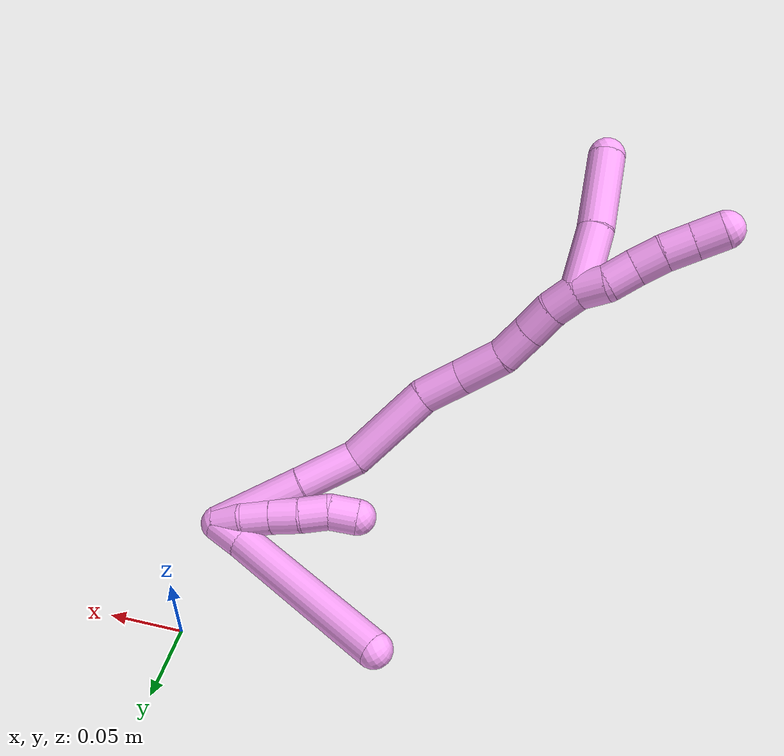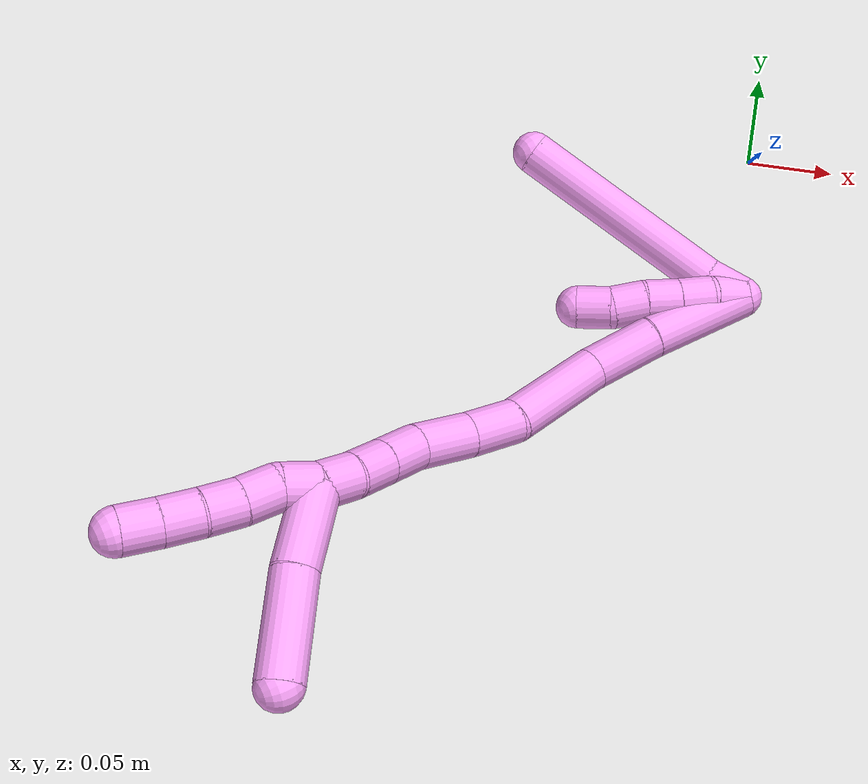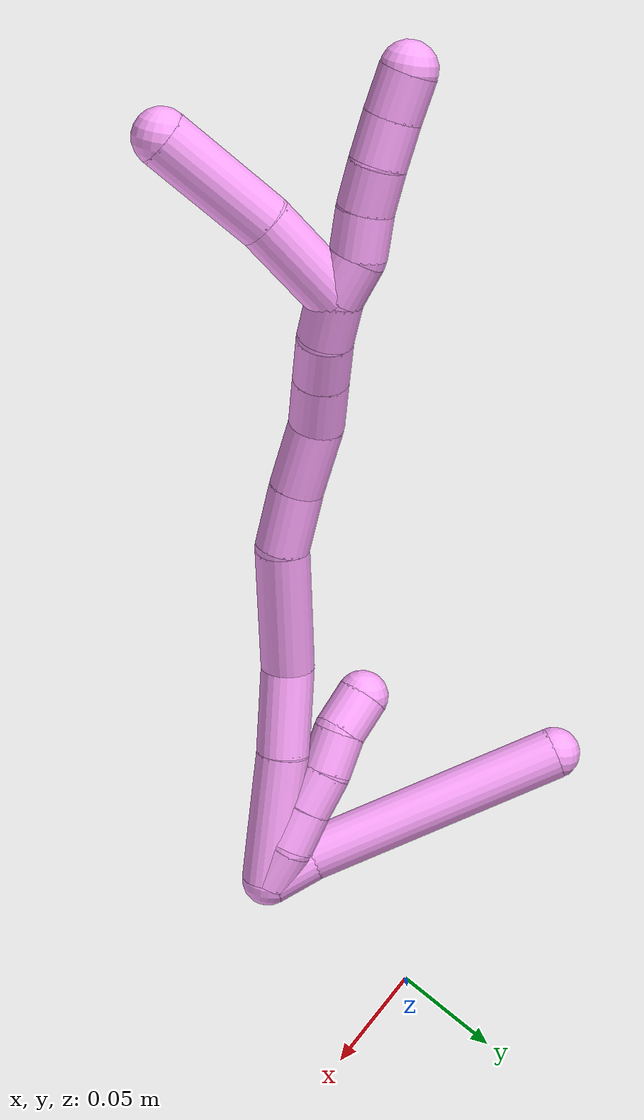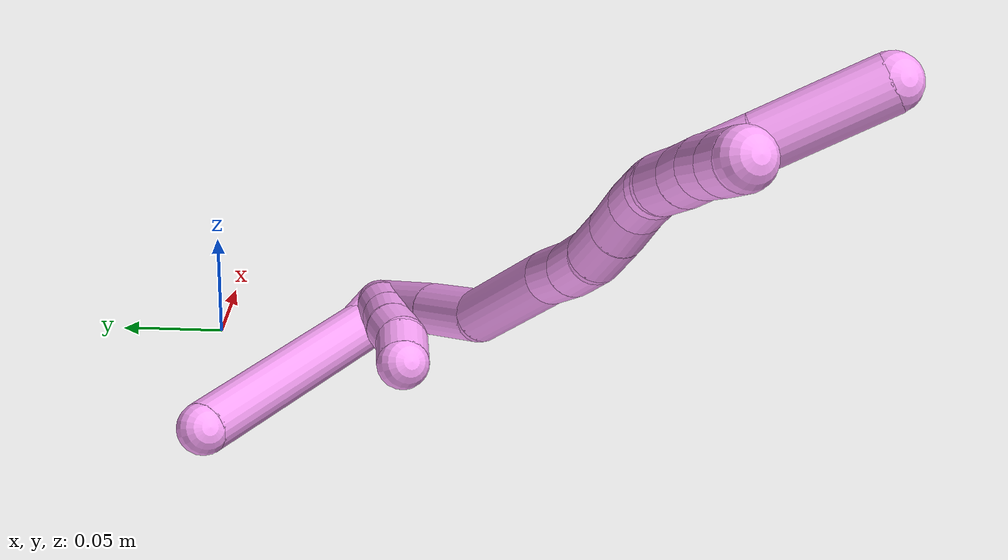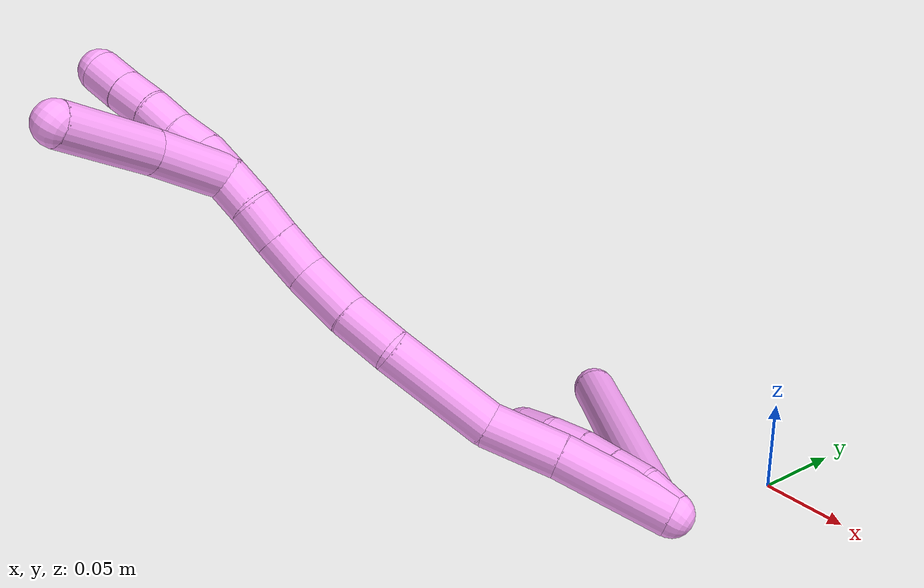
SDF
<sdf version="1.7">
 <world name="default">
  <model name="photoneo_s_sensor">
   <static>1</static>
   <pose>0 0 2 1.57079 1.57079 3.14159</pose>
   <link name="link">
    <inertial><mass>0.1</mass></inertial>
    <sensor name="sensor" type="depth">
     <update_rate>30</update_rate>
     <camera>
      <horizontal_fov>1.22</horizontal_fov>
      <image><width>1920</width><height>1200</height><format>B8G8R8</format></image>
      <clip><near>0.1</near><far>4</far></clip>
      <depth_camera><output>points</output></depth_camera>
     </camera>
     <plugin name="camera_plugin" filename="libgazebo_ros_depth_camera.so">
      <baseline>0.2</baseline>
      <alwaysOn>1</alwaysOn>
      <updateRate>0.0</updateRate>
      <cameraName>camera_ir</cameraName>
      <imageTopicName>/camera/color/image_raw</imageTopicName>
      <cameraInfoTopicName>/camera/color/camera_info</cameraInfoTopicName>
      <depthImageTopicName>/camera/depth/image_raw</depthImageTopicName>
      <depthImageCameraInfoTopicName>/camera/depth/camera_info</depthImageCameraInfoTopicName>
      <pointCloudTopicName>/camera/depth/points</pointCloudTopicName>
      <frameName>fr_optical</frameName>
      <pointCloudCutoff>0.1</pointCloudCutoff>
      <pointCloudCutoffMax>2.0</pointCloudCutoffMax>
      <distortionK1>0</distortionK1>
      <distortionK2>0</distortionK2>
      <distortionK3>0</distortionK3>
      <distortionT1>0</distortionT1>
      <distortionT2>0</distortionT2>
      <CxPrime>0</CxPrime>
      <Cx>0</Cx>
      <Cy>0</Cy>
      <focalLength>0</focalLength>
      <hackBaseline>0</hackBaseline>
     </plugin>
    </sensor>
   </link>
  </model>
  <model name="bin">
   <static>1</static>
   <link name="bottom">
    <collision name="collision-bottom">
     <pose>0 0 -0.01 0 -0 0</pose>
     <geometry><box><size>0.8 0.6 0.02</size></box></geometry>
     <surface>
      <friction><ode><mu>100</mu><mu2>100</mu2></ode></friction>
      <contact><collide_bitmask>65535</collide_bitmask></contact>
     </surface>
    </collision>
   </link>
   <link name="west_wall">
    <collision name="collision-west_wall">
     <pose>-0.41 0 0.1 0 -0 0</pose>
     <geometry><box><size>0.02 0.6 0.2</size></box></geometry>
     <surface>
      <friction><ode><mu>100</mu><mu2>100</mu2></ode></friction>
      <contact><collide_bitmask>65535</collide_bitmask></contact>
     </surface>
    </collision>
   </link>
   <link name="east_wall">
    <collision name="collision-east_wall">
     <pose>0.41 0 0.1 0 -0 0</pose>
     <geometry><box><size>0.02 0.6 0.2</size></box></geometry>
     <surface>
      <friction><ode><mu>100</mu><mu2>100</mu2></ode></friction>
      <contact><collide_bitmask>65535</collide_bitmask></contact>
     </surface>
    </collision>
   </link>
   <link name="south_wall">
    <collision name="collision-south_wall">
     <pose>0 -0.31 0.1 0 -0 0</pose>
     <geometry><box><size>0.8 0.02 0.2</size></box></geometry>
     <surface>
      <friction><ode><mu>100</mu><mu2>100</mu2></ode></friction>
      <contact><collide_bitmask>65535</collide_bitmask></contact>
     </surface>
    </collision>
   </link>
   <link name="north_wall">
    <collision name="collision-north_wall">
     <pose>0 0.31 0.1 0 -0 0</pose>
     <geometry><box><size>0.8 0.02 0.2</size></box></geometry>
     <surface>
      <friction><ode><mu>100</mu><mu2>100</mu2></ode></friction>
      <contact><collide_bitmask>65535</collide_bitmask></contact>
     </surface>
    </collision>
   </link>
  </model>
  <model name="4">
   <static>0</static>
   <link name="4">
    <collision name="collision-cylinder-e_1_2_8">
     <pose>-0.006126 0.007958 0.005689 -0.950138 -0.559465 0.293392</pose>
     <geometry><cylinder><radius>0.0125</radius><length>0.023085</length></cylinder></geometry>
     <surface>
      <friction><ode><mu>1.16</mu><mu2>1.16</mu2><slip1>0</slip1><slip2>0</slip2></ode></friction>
      <contact><ode><kp>1e+06</kp><kd>1</kd><max_vel>0</max_vel><min_depth>0.001</min_depth></ode></contact>
     </surface>
    </collision>
    <visual name="visual-cylinder-e_1_2_8">
     <pose>-0.006126 0.007958 0.005689 -0.950138 -0.559465 0.293392</pose>
     <geometry><cylinder><radius>0.0125</radius><length>0.023085</length></cylinder></geometry>
     <material><ambient>1 0.65098 0.996078 1</ambient></material>
    </visual>
    <collision name="collision-cylinder-e_2_8_6">
     <pose>-0.035827 0.066044 0.042335 -1.01758 -0.380642 0.21409</pose>
     <geometry><cylinder><radius>0.0125</radius><length>0.126915</length></cylinder></geometry>
     <surface>
      <friction><ode><mu>1.16</mu><mu2>1.16</mu2><slip1>0</slip1><slip2>0</slip2></ode></friction>
      <contact><ode><kp>1e+06</kp><kd>1</kd><max_vel>0</max_vel><min_depth>0.001</min_depth></ode></contact>
     </surface>
    </collision>
    <visual name="visual-cylinder-e_2_8_6">
     <pose>-0.035827 0.066044 0.042335 -1.01758 -0.380642 0.21409</pose>
     <geometry><cylinder><radius>0.0125</radius><length>0.126915</length></cylinder></geometry>
     <material><ambient>1 0.65098 0.996078 1</ambient></material>
    </visual>
    <collision name="collision-cylinder-e_1_2_9">
     <pose>-0.00119 0.003089 0.009436 -0.316344 -0.119285 0.019048</pose>
     <geometry><cylinder><radius>0.0125</radius><length>0.02</length></cylinder></geometry>
     <surface>
      <friction><ode><mu>1.16</mu><mu2>1.16</mu2><slip1>0</slip1><slip2>0</slip2></ode></friction>
      <contact><ode><kp>1e+06</kp><kd>1</kd><max_vel>0</max_vel><min_depth>0.001</min_depth></ode></contact>
     </surface>
    </collision>
    <visual name="visual-cylinder-e_1_2_9">
     <pose>-0.00119 0.003089 0.009436 -0.316344 -0.119285 0.019048</pose>
     <geometry><cylinder><radius>0.0125</radius><length>0.02</length></cylinder></geometry>
     <material><ambient>1 0.65098 0.996078 1</ambient></material>
    </visual>
    <collision name="collision-cylinder-e_2_9_10">
     <pose>-0.005467 0.008247 0.028156 -0.219339 -0.313769 0.034832</pose>
     <geometry><cylinder><radius>0.0125</radius><length>0.02</length></cylinder></geometry>
     <surface>
      <friction><ode><mu>1.16</mu><mu2>1.16</mu2><slip1>0</slip1><slip2>0</slip2></ode></friction>
      <contact><ode><kp>1e+06</kp><kd>1</kd><max_vel>0</max_vel><min_depth>0.001</min_depth></ode></contact>
     </surface>
    </collision>
    <visual name="visual-cylinder-e_2_9_10">
     <pose>-0.005467 0.008247 0.028156 -0.219339 -0.313769 0.034832</pose>
     <geometry><cylinder><radius>0.0125</radius><length>0.02</length></cylinder></geometry>
     <material><ambient>1 0.65098 0.996078 1</ambient></material>
    </visual>
    <collision name="collision-cylinder-e_3_10_11">
     <pose>-0.011919 0.012865 0.046505 -0.274022 -0.343308 0.047795</pose>
     <geometry><cylinder><radius>0.0125</radius><length>0.02</length></cylinder></geometry>
     <surface>
      <friction><ode><mu>1.16</mu><mu2>1.16</mu2><slip1>0</slip1><slip2>0</slip2></ode></friction>
      <contact><ode><kp>1e+06</kp><kd>1</kd><max_vel>0</max_vel><min_depth>0.001</min_depth></ode></contact>
     </surface>
    </collision>
    <visual name="visual-cylinder-e_3_10_11">
     <pose>-0.011919 0.012865 0.046505 -0.274022 -0.343308 0.047795</pose>
     <geometry><cylinder><radius>0.0125</radius><length>0.02</length></cylinder></geometry>
     <material><ambient>1 0.65098 0.996078 1</ambient></material>
    </visual>
    <collision name="collision-cylinder-e_4_11_12">
     <pose>-0.019008 0.016512 0.064786 -0.118654 -0.381495 0.022937</pose>
     <geometry><cylinder><radius>0.0125</radius><length>0.02</length></cylinder></geometry>
     <surface>
      <friction><ode><mu>1.16</mu><mu2>1.16</mu2><slip1>0</slip1><slip2>0</slip2></ode></friction>
      <contact><ode><kp>1e+06</kp><kd>1</kd><max_vel>0</max_vel><min_depth>0.001</min_depth></ode></contact>
     </surface>
    </collision>
    <visual name="visual-cylinder-e_4_11_12">
     <pose>-0.019008 0.016512 0.064786 -0.118654 -0.381495 0.022937</pose>
     <geometry><cylinder><radius>0.0125</radius><length>0.02</length></cylinder></geometry>
     <material><ambient>1 0.65098 0.996078 1</ambient></material>
    </visual>
    <collision name="collision-cylinder-e_5_12_5">
     <pose>-0.028361 0.020526 0.081735 -0.360538 -0.598026 0.11224</pose>
     <geometry><cylinder><radius>0.0125</radius><length>0.02</length></cylinder></geometry>
     <surface>
      <friction><ode><mu>1.16</mu><mu2>1.16</mu2><slip1>0</slip1><slip2>0</slip2></ode></friction>
      <contact><ode><kp>1e+06</kp><kd>1</kd><max_vel>0</max_vel><min_depth>0.001</min_depth></ode></contact>
     </surface>
    </collision>
    <visual name="visual-cylinder-e_5_12_5">
     <pose>-0.028361 0.020526 0.081735 -0.360538 -0.598026 0.11224</pose>
     <geometry><cylinder><radius>0.0125</radius><length>0.02</length></cylinder></geometry>
     <material><ambient>1 0.65098 0.996078 1</ambient></material>
    </visual>
    <collision name="collision-cylinder-e_1_2_13">
     <pose>-0.003713 -0.002293 0.031577 0.072492 -0.116758 -0.004239</pose>
     <geometry><cylinder><radius>0.0125</radius><length>0.063755</length></cylinder></geometry>
     <surface>
      <friction><ode><mu>1.16</mu><mu2>1.16</mu2><slip1>0</slip1><slip2>0</slip2></ode></friction>
      <contact><ode><kp>1e+06</kp><kd>1</kd><max_vel>0</max_vel><min_depth>0.001</min_depth></ode></contact>
     </surface>
    </collision>
    <visual name="visual-cylinder-e_1_2_13">
     <pose>-0.003713 -0.002293 0.031577 0.072492 -0.116758 -0.004239</pose>
     <geometry><cylinder><radius>0.0125</radius><length>0.063755</length></cylinder></geometry>
     <material><ambient>1 0.65098 0.996078 1</ambient></material>
    </visual>
    <collision name="collision-cylinder-e_2_13_14">
     <pose>-0.010634 -0.00748 0.083657 0.140191 -0.153666 -0.01081</pose>
     <geometry><cylinder><radius>0.0125</radius><length>0.041905</length></cylinder></geometry>
     <surface>
      <friction><ode><mu>1.16</mu><mu2>1.16</mu2><slip1>0</slip1><slip2>0</slip2></ode></friction>
      <contact><ode><kp>1e+06</kp><kd>1</kd><max_vel>0</max_vel><min_depth>0.001</min_depth></ode></contact>
     </surface>
    </collision>
    <visual name="visual-cylinder-e_2_13_14">
     <pose>-0.010634 -0.00748 0.083657 0.140191 -0.153666 -0.01081</pose>
     <geometry><cylinder><radius>0.0125</radius><length>0.041905</length></cylinder></geometry>
     <material><ambient>1 0.65098 0.996078 1</ambient></material>
    </visual>
    <collision name="collision-cylinder-e_3_14_15">
     <pose>-0.007621 -0.014842 0.135397 0.142108 0.194622 0.013896</pose>
     <geometry><cylinder><radius>0.0125</radius><length>0.064325</length></cylinder></geometry>
     <surface>
      <friction><ode><mu>1.16</mu><mu2>1.16</mu2><slip1>0</slip1><slip2>0</slip2></ode></friction>
      <contact><ode><kp>1e+06</kp><kd>1</kd><max_vel>0</max_vel><min_depth>0.001</min_depth></ode></contact>
     </surface>
    </collision>
    <visual name="visual-cylinder-e_3_14_15">
     <pose>-0.007621 -0.014842 0.135397 0.142108 0.194622 0.013896</pose>
     <geometry><cylinder><radius>0.0125</radius><length>0.064325</length></cylinder></geometry>
     <material><ambient>1 0.65098 0.996078 1</ambient></material>
    </visual>
    <collision name="collision-cylinder-e_4_15_16">
     <pose>-0.001006 -0.018131 0.181624 -0.078577 0.026266 -0.001033</pose>
     <geometry><cylinder><radius>0.0125</radius><length>0.030084</length></cylinder></geometry>
     <surface>
      <friction><ode><mu>1.16</mu><mu2>1.16</mu2><slip1>0</slip1><slip2>0</slip2></ode></friction>
      <contact><ode><kp>1e+06</kp><kd>1</kd><max_vel>0</max_vel><min_depth>0.001</min_depth></ode></contact>
     </surface>
    </collision>
    <visual name="visual-cylinder-e_4_15_16">
     <pose>-0.001006 -0.018131 0.181624 -0.078577 0.026266 -0.001033</pose>
     <geometry><cylinder><radius>0.0125</radius><length>0.030084</length></cylinder></geometry>
     <material><ambient>1 0.65098 0.996078 1</ambient></material>
    </visual>
    <collision name="collision-cylinder-e_5_16_17">
     <pose>0.000659 -0.014579 0.212578 -0.1475 0.078503 -0.005803</pose>
     <geometry><cylinder><radius>0.0125</radius><length>0.032378</length></cylinder></geometry>
     <surface>
      <friction><ode><mu>1.16</mu><mu2>1.16</mu2><slip1>0</slip1><slip2>0</slip2></ode></friction>
      <contact><ode><kp>1e+06</kp><kd>1</kd><max_vel>0</max_vel><min_depth>0.001</min_depth></ode></contact>
     </surface>
    </collision>
    <visual name="visual-cylinder-e_5_16_17">
     <pose>0.000659 -0.014579 0.212578 -0.1475 0.078503 -0.005803</pose>
     <geometry><cylinder><radius>0.0125</radius><length>0.032378</length></cylinder></geometry>
     <material><ambient>1 0.65098 0.996078 1</ambient></material>
    </visual>
    <collision name="collision-cylinder-e_6_17_18">
     <pose>0.005844 -0.012046 0.240182 -0.013805 0.324437 -0.002259</pose>
     <geometry><cylinder><radius>0.0125</radius><length>0.024565</length></cylinder></geometry>
     <surface>
      <friction><ode><mu>1.16</mu><mu2>1.16</mu2><slip1>0</slip1><slip2>0</slip2></ode></friction>
      <contact><ode><kp>1e+06</kp><kd>1</kd><max_vel>0</max_vel><min_depth>0.001</min_depth></ode></contact>
     </surface>
    </collision>
    <visual name="visual-cylinder-e_6_17_18">
     <pose>0.005844 -0.012046 0.240182 -0.013805 0.324437 -0.002259</pose>
     <geometry><cylinder><radius>0.0125</radius><length>0.024565</length></cylinder></geometry>
     <material><ambient>1 0.65098 0.996078 1</ambient></material>
    </visual>
    <collision name="collision-cylinder-e_7_18_19">
     <pose>0.013659 -0.011559 0.262054 -0.031908 0.36406 -0.005874</pose>
     <geometry><cylinder><radius>0.0125</radius><length>0.021908</length></cylinder></geometry>
     <surface>
      <friction><ode><mu>1.16</mu><mu2>1.16</mu2><slip1>0</slip1><slip2>0</slip2></ode></friction>
      <contact><ode><kp>1e+06</kp><kd>1</kd><max_vel>0</max_vel><min_depth>0.001</min_depth></ode></contact>
     </surface>
    </collision>
    <visual name="visual-cylinder-e_7_18_19">
     <pose>0.013659 -0.011559 0.262054 -0.031908 0.36406 -0.005874</pose>
     <geometry><cylinder><radius>0.0125</radius><length>0.021908</length></cylinder></geometry>
     <material><ambient>1 0.65098 0.996078 1</ambient></material>
    </visual>
    <collision name="collision-cylinder-e_8_19_1">
     <pose>0.019787 -0.010067 0.282521 -0.113346 0.212892 -0.012124</pose>
     <geometry><cylinder><radius>0.0125</radius><length>0.021081</length></cylinder></geometry>
     <surface>
      <friction><ode><mu>1.16</mu><mu2>1.16</mu2><slip1>0</slip1><slip2>0</slip2></ode></friction>
      <contact><ode><kp>1e+06</kp><kd>1</kd><max_vel>0</max_vel><min_depth>0.001</min_depth></ode></contact>
     </surface>
    </collision>
    <visual name="visual-cylinder-e_8_19_1">
     <pose>0.019787 -0.010067 0.282521 -0.113346 0.212892 -0.012124</pose>
     <geometry><cylinder><radius>0.0125</radius><length>0.021081</length></cylinder></geometry>
     <material><ambient>1 0.65098 0.996078 1</ambient></material>
    </visual>
    <collision name="collision-cylinder-e_1_1_20">
     <pose>0.021588 -0.005602 0.302188 -0.336565 -0.042577 0.007234</pose>
     <geometry><cylinder><radius>0.0125</radius><length>0.02</length></cylinder></geometry>
     <surface>
      <friction><ode><mu>1.16</mu><mu2>1.16</mu2><slip1>0</slip1><slip2>0</slip2></ode></friction>
      <contact><ode><kp>1e+06</kp><kd>1</kd><max_vel>0</max_vel><min_depth>0.001</min_depth></ode></contact>
     </surface>
    </collision>
    <visual name="visual-cylinder-e_1_1_20">
     <pose>0.021588 -0.005602 0.302188 -0.336565 -0.042577 0.007234</pose>
     <geometry><cylinder><radius>0.0125</radius><length>0.02</length></cylinder></geometry>
     <material><ambient>1 0.65098 0.996078 1</ambient></material>
    </visual>
    <collision name="collision-cylinder-e_2_20_21">
     <pose>0.021391 -0.002346 0.321615 0.004292 0.02287 4.9e-05</pose>
     <geometry><cylinder><radius>0.0125</radius><length>0.02</length></cylinder></geometry>
     <surface>
      <friction><ode><mu>1.16</mu><mu2>1.16</mu2><slip1>0</slip1><slip2>0</slip2></ode></friction>
      <contact><ode><kp>1e+06</kp><kd>1</kd><max_vel>0</max_vel><min_depth>0.001</min_depth></ode></contact>
     </surface>
    </collision>
    <visual name="visual-cylinder-e_2_20_21">
     <pose>0.021391 -0.002346 0.321615 0.004292 0.02287 4.9e-05</pose>
     <geometry><cylinder><radius>0.0125</radius><length>0.02</length></cylinder></geometry>
     <material><ambient>1 0.65098 0.996078 1</ambient></material>
    </visual>
    <collision name="collision-cylinder-e_3_21_22">
     <pose>0.022043 -0.001284 0.341543 -0.11079 0.042362 -0.002349</pose>
     <geometry><cylinder><radius>0.0125</radius><length>0.02</length></cylinder></geometry>
     <surface>
      <friction><ode><mu>1.16</mu><mu2>1.16</mu2><slip1>0</slip1><slip2>0</slip2></ode></friction>
      <contact><ode><kp>1e+06</kp><kd>1</kd><max_vel>0</max_vel><min_depth>0.001</min_depth></ode></contact>
     </surface>
    </collision>
    <visual name="visual-cylinder-e_3_21_22">
     <pose>0.022043 -0.001284 0.341543 -0.11079 0.042362 -0.002349</pose>
     <geometry><cylinder><radius>0.0125</radius><length>0.02</length></cylinder></geometry>
     <material><ambient>1 0.65098 0.996078 1</ambient></material>
    </visual>
    <collision name="collision-cylinder-e_4_22_23">
     <pose>0.021713 0.001058 0.361367 -0.124372 -0.075431 0.004699</pose>
     <geometry><cylinder><radius>0.0125</radius><length>0.02</length></cylinder></geometry>
     <surface>
      <friction><ode><mu>1.16</mu><mu2>1.16</mu2><slip1>0</slip1><slip2>0</slip2></ode></friction>
      <contact><ode><kp>1e+06</kp><kd>1</kd><max_vel>0</max_vel><min_depth>0.001</min_depth></ode></contact>
     </surface>
    </collision>
    <visual name="visual-cylinder-e_4_22_23">
     <pose>0.021713 0.001058 0.361367 -0.124372 -0.075431 0.004699</pose>
     <geometry><cylinder><radius>0.0125</radius><length>0.02</length></cylinder></geometry>
     <material><ambient>1 0.65098 0.996078 1</ambient></material>
    </visual>
    <collision name="collision-cylinder-e_5_23_4">
     <pose>0.020432 0.003917 0.381115 -0.163159 -0.05283 0.00432</pose>
     <geometry><cylinder><radius>0.0125</radius><length>0.02</length></cylinder></geometry>
     <surface>
      <friction><ode><mu>1.16</mu><mu2>1.16</mu2><slip1>0</slip1><slip2>0</slip2></ode></friction>
      <contact><ode><kp>1e+06</kp><kd>1</kd><max_vel>0</max_vel><min_depth>0.001</min_depth></ode></contact>
     </surface>
    </collision>
    <visual name="visual-cylinder-e_5_23_4">
     <pose>0.020432 0.003917 0.381115 -0.163159 -0.05283 0.00432</pose>
     <geometry><cylinder><radius>0.0125</radius><length>0.02</length></cylinder></geometry>
     <material><ambient>1 0.65098 0.996078 1</ambient></material>
    </visual>
    <collision name="collision-cylinder-e_1_1_24">
     <pose>0.028981 -0.024731 0.306788 0.845565 0.318187 0.144127</pose>
     <geometry><cylinder><radius>0.0125</radius><length>0.04454</length></cylinder></geometry>
     <surface>
      <friction><ode><mu>1.16</mu><mu2>1.16</mu2><slip1>0</slip1><slip2>0</slip2></ode></friction>
      <contact><ode><kp>1e+06</kp><kd>1</kd><max_vel>0</max_vel><min_depth>0.001</min_depth></ode></contact>
     </surface>
    </collision>
    <visual name="visual-cylinder-e_1_1_24">
     <pose>0.028981 -0.024731 0.306788 0.845565 0.318187 0.144127</pose>
     <geometry><cylinder><radius>0.0125</radius><length>0.04454</length></cylinder></geometry>
     <material><ambient>1 0.65098 0.996078 1</ambient></material>
    </visual>
    <collision name="collision-cylinder-e_2_24_3">
     <pose>0.045318 -0.062049 0.335631 0.967282 0.344669 0.182343</pose>
     <geometry><cylinder><radius>0.0125</radius><length>0.05546</length></cylinder></geometry>
     <surface>
      <friction><ode><mu>1.16</mu><mu2>1.16</mu2><slip1>0</slip1><slip2>0</slip2></ode></friction>
      <contact><ode><kp>1e+06</kp><kd>1</kd><max_vel>0</max_vel><min_depth>0.001</min_depth></ode></contact>
     </surface>
    </collision>
    <visual name="visual-cylinder-e_2_24_3">
     <pose>0.045318 -0.062049 0.335631 0.967282 0.344669 0.182343</pose>
     <geometry><cylinder><radius>0.0125</radius><length>0.05546</length></cylinder></geometry>
     <material><ambient>1 0.65098 0.996078 1</ambient></material>
    </visual>
    <collision name="collision-sphere-3">
     <pose>0.054687 -0.083537 0.350443 0 -0 0</pose>
     <geometry><sphere><radius>0.0125</radius></sphere></geometry>
     <surface>
      <friction><ode><mu>1.16</mu><mu2>1.16</mu2><slip1>0</slip1><slip2>0</slip2></ode></friction>
      <contact><ode><kp>1e+06</kp><kd>1</kd><max_vel>0</max_vel><min_depth>0.001</min_depth></ode></contact>
     </surface>
    </collision>
    <visual name="visual-sphere-3">
     <pose>0.054687 -0.083537 0.350443 0 -0 0</pose>
     <geometry><sphere><radius>0.0125</radius></sphere></geometry>
     <material><ambient>1 0.65098 0.996078 1</ambient></material>
    </visual>
    <collision name="collision-sphere-24">
     <pose>0.035948 -0.04056 0.320818 0 -0 0</pose>
     <geometry><sphere><radius>0.0125</radius></sphere></geometry>
     <surface>
      <friction><ode><mu>1.16</mu><mu2>1.16</mu2><slip1>0</slip1><slip2>0</slip2></ode></friction>
      <contact><ode><kp>1e+06</kp><kd>1</kd><max_vel>0</max_vel><min_depth>0.001</min_depth></ode></contact>
     </surface>
    </collision>
    <visual name="visual-sphere-24">
     <pose>0.035948 -0.04056 0.320818 0 -0 0</pose>
     <geometry><sphere><radius>0.0125</radius></sphere></geometry>
     <material><ambient>1 0.65098 0.996078 1</ambient></material>
    </visual>
    <collision name="collision-sphere-4">
     <pose>0.019904 0.005539 0.390968 0 -0 0</pose>
     <geometry><sphere><radius>0.0125</radius></sphere></geometry>
     <surface>
      <friction><ode><mu>1.16</mu><mu2>1.16</mu2><slip1>0</slip1><slip2>0</slip2></ode></friction>
      <contact><ode><kp>1e+06</kp><kd>1</kd><max_vel>0</max_vel><min_depth>0.001</min_depth></ode></contact>
     </surface>
    </collision>
    <visual name="visual-sphere-4">
     <pose>0.019904 0.005539 0.390968 0 -0 0</pose>
     <geometry><sphere><radius>0.0125</radius></sphere></geometry>
     <material><ambient>1 0.65098 0.996078 1</ambient></material>
    </visual>
    <collision name="collision-sphere-23">
     <pose>0.02096 0.002295 0.371261 0 -0 0</pose>
     <geometry><sphere><radius>0.0125</radius></sphere></geometry>
     <surface>
      <friction><ode><mu>1.16</mu><mu2>1.16</mu2><slip1>0</slip1><slip2>0</slip2></ode></friction>
      <contact><ode><kp>1e+06</kp><kd>1</kd><max_vel>0</max_vel><min_depth>0.001</min_depth></ode></contact>
     </surface>
    </collision>
    <visual name="visual-sphere-23">
     <pose>0.02096 0.002295 0.371261 0 -0 0</pose>
     <geometry><sphere><radius>0.0125</radius></sphere></geometry>
     <material><ambient>1 0.65098 0.996078 1</ambient></material>
    </visual>
    <collision name="collision-sphere-22">
     <pose>0.022467 -0.000179 0.351472 0 -0 0</pose>
     <geometry><sphere><radius>0.0125</radius></sphere></geometry>
     <surface>
      <friction><ode><mu>1.16</mu><mu2>1.16</mu2><slip1>0</slip1><slip2>0</slip2></ode></friction>
      <contact><ode><kp>1e+06</kp><kd>1</kd><max_vel>0</max_vel><min_depth>0.001</min_depth></ode></contact>
     </surface>
    </collision>
    <visual name="visual-sphere-22">
     <pose>0.022467 -0.000179 0.351472 0 -0 0</pose>
     <geometry><sphere><radius>0.0125</radius></sphere></geometry>
     <material><ambient>1 0.65098 0.996078 1</ambient></material>
    </visual>
    <collision name="collision-sphere-21">
     <pose>0.02162 -0.002389 0.331613 0 -0 0</pose>
     <geometry><sphere><radius>0.0125</radius></sphere></geometry>
     <surface>
      <friction><ode><mu>1.16</mu><mu2>1.16</mu2><slip1>0</slip1><slip2>0</slip2></ode></friction>
      <contact><ode><kp>1e+06</kp><kd>1</kd><max_vel>0</max_vel><min_depth>0.001</min_depth></ode></contact>
     </surface>
    </collision>
    <visual name="visual-sphere-21">
     <pose>0.02162 -0.002389 0.331613 0 -0 0</pose>
     <geometry><sphere><radius>0.0125</radius></sphere></geometry>
     <material><ambient>1 0.65098 0.996078 1</ambient></material>
    </visual>
    <collision name="collision-sphere-20">
     <pose>0.021163 -0.002303 0.311618 0 -0 0</pose>
     <geometry><sphere><radius>0.0125</radius></sphere></geometry>
     <surface>
      <friction><ode><mu>1.16</mu><mu2>1.16</mu2><slip1>0</slip1><slip2>0</slip2></ode></friction>
      <contact><ode><kp>1e+06</kp><kd>1</kd><max_vel>0</max_vel><min_depth>0.001</min_depth></ode></contact>
     </surface>
    </collision>
    <visual name="visual-sphere-20">
     <pose>0.021163 -0.002303 0.311618 0 -0 0</pose>
     <geometry><sphere><radius>0.0125</radius></sphere></geometry>
     <material><ambient>1 0.65098 0.996078 1</ambient></material>
    </visual>
    <collision name="collision-sphere-11">
     <pose>-0.015285 0.015413 0.055571 0 -0 0</pose>
     <geometry><sphere><radius>0.0125</radius></sphere></geometry>
     <surface>
      <friction><ode><mu>1.16</mu><mu2>1.16</mu2><slip1>0</slip1><slip2>0</slip2></ode></friction>
      <contact><ode><kp>1e+06</kp><kd>1</kd><max_vel>0</max_vel><min_depth>0.001</min_depth></ode></contact>
     </surface>
    </collision>
    <visual name="visual-sphere-11">
     <pose>-0.015285 0.015413 0.055571 0 -0 0</pose>
     <geometry><sphere><radius>0.0125</radius></sphere></geometry>
     <material><ambient>1 0.65098 0.996078 1</ambient></material>
    </visual>
    <collision name="collision-sphere-10">
     <pose>-0.008553 0.010317 0.03744 0 -0 0</pose>
     <geometry><sphere><radius>0.0125</radius></sphere></geometry>
     <surface>
      <friction><ode><mu>1.16</mu><mu2>1.16</mu2><slip1>0</slip1><slip2>0</slip2></ode></friction>
      <contact><ode><kp>1e+06</kp><kd>1</kd><max_vel>0</max_vel><min_depth>0.001</min_depth></ode></contact>
     </surface>
    </collision>
    <visual name="visual-sphere-10">
     <pose>-0.008553 0.010317 0.03744 0 -0 0</pose>
     <geometry><sphere><radius>0.0125</radius></sphere></geometry>
     <material><ambient>1 0.65098 0.996078 1</ambient></material>
    </visual>
    <collision name="collision-sphere-6">
     <pose>-0.059403 0.116172 0.073291 0 -0 0</pose>
     <geometry><sphere><radius>0.0125</radius></sphere></geometry>
     <surface>
      <friction><ode><mu>1.16</mu><mu2>1.16</mu2><slip1>0</slip1><slip2>0</slip2></ode></friction>
      <contact><ode><kp>1e+06</kp><kd>1</kd><max_vel>0</max_vel><min_depth>0.001</min_depth></ode></contact>
     </surface>
    </collision>
    <visual name="visual-sphere-6">
     <pose>-0.059403 0.116172 0.073291 0 -0 0</pose>
     <geometry><sphere><radius>0.0125</radius></sphere></geometry>
     <material><ambient>1 0.65098 0.996078 1</ambient></material>
    </visual>
    <collision name="collision-sphere-9">
     <pose>-0.00238 0.006178 0.018873 0 -0 0</pose>
     <geometry><sphere><radius>0.0125</radius></sphere></geometry>
     <surface>
      <friction><ode><mu>1.16</mu><mu2>1.16</mu2><slip1>0</slip1><slip2>0</slip2></ode></friction>
      <contact><ode><kp>1e+06</kp><kd>1</kd><max_vel>0</max_vel><min_depth>0.001</min_depth></ode></contact>
     </surface>
    </collision>
    <visual name="visual-sphere-9">
     <pose>-0.00238 0.006178 0.018873 0 -0 0</pose>
     <geometry><sphere><radius>0.0125</radius></sphere></geometry>
     <material><ambient>1 0.65098 0.996078 1</ambient></material>
    </visual>
    <collision name="collision-sphere-2">
     <geometry><sphere><radius>0.0125</radius></sphere></geometry>
     <surface>
      <friction><ode><mu>1.16</mu><mu2>1.16</mu2><slip1>0</slip1><slip2>0</slip2></ode></friction>
      <contact><ode><kp>1e+06</kp><kd>1</kd><max_vel>0</max_vel><min_depth>0.001</min_depth></ode></contact>
     </surface>
    </collision>
    <visual name="visual-sphere-2">
     <geometry><sphere><radius>0.0125</radius></sphere></geometry>
     <material><ambient>1 0.65098 0.996078 1</ambient></material>
    </visual>
    <collision name="collision-sphere-19">
     <pose>0.01756 -0.011232 0.272284 0 -0 0</pose>
     <geometry><sphere><radius>0.0125</radius></sphere></geometry>
     <surface>
      <friction><ode><mu>1.16</mu><mu2>1.16</mu2><slip1>0</slip1><slip2>0</slip2></ode></friction>
      <contact><ode><kp>1e+06</kp><kd>1</kd><max_vel>0</max_vel><min_depth>0.001</min_depth></ode></contact>
     </surface>
    </collision>
    <visual name="visual-sphere-19">
     <pose>0.01756 -0.011232 0.272284 0 -0 0</pose>
     <geometry><sphere><radius>0.0125</radius></sphere></geometry>
     <material><ambient>1 0.65098 0.996078 1</ambient></material>
    </visual>
    <collision name="collision-sphere-8">
     <pose>-0.012252 0.015916 0.011379 0 -0 0</pose>
     <geometry><sphere><radius>0.0125</radius></sphere></geometry>
     <surface>
      <friction><ode><mu>1.16</mu><mu2>1.16</mu2><slip1>0</slip1><slip2>0</slip2></ode></friction>
      <contact><ode><kp>1e+06</kp><kd>1</kd><max_vel>0</max_vel><min_depth>0.001</min_depth></ode></contact>
     </surface>
    </collision>
    <visual name="visual-sphere-8">
     <pose>-0.012252 0.015916 0.011379 0 -0 0</pose>
     <geometry><sphere><radius>0.0125</radius></sphere></geometry>
     <material><ambient>1 0.65098 0.996078 1</ambient></material>
    </visual>
    <collision name="collision-sphere-12">
     <pose>-0.022731 0.01761 0.074002 0 -0 0</pose>
     <geometry><sphere><radius>0.0125</radius></sphere></geometry>
     <surface>
      <friction><ode><mu>1.16</mu><mu2>1.16</mu2><slip1>0</slip1><slip2>0</slip2></ode></friction>
      <contact><ode><kp>1e+06</kp><kd>1</kd><max_vel>0</max_vel><min_depth>0.001</min_depth></ode></contact>
     </surface>
    </collision>
    <visual name="visual-sphere-12">
     <pose>-0.022731 0.01761 0.074002 0 -0 0</pose>
     <geometry><sphere><radius>0.0125</radius></sphere></geometry>
     <material><ambient>1 0.65098 0.996078 1</ambient></material>
    </visual>
    <collision name="collision-sphere-5">
     <pose>-0.033991 0.023442 0.089469 0 -0 0</pose>
     <geometry><sphere><radius>0.0125</radius></sphere></geometry>
     <surface>
      <friction><ode><mu>1.16</mu><mu2>1.16</mu2><slip1>0</slip1><slip2>0</slip2></ode></friction>
      <contact><ode><kp>1e+06</kp><kd>1</kd><max_vel>0</max_vel><min_depth>0.001</min_depth></ode></contact>
     </surface>
    </collision>
    <visual name="visual-sphere-5">
     <pose>-0.033991 0.023442 0.089469 0 -0 0</pose>
     <geometry><sphere><radius>0.0125</radius></sphere></geometry>
     <material><ambient>1 0.65098 0.996078 1</ambient></material>
    </visual>
    <collision name="collision-sphere-13">
     <pose>-0.007427 -0.004586 0.063154 0 -0 0</pose>
     <geometry><sphere><radius>0.0125</radius></sphere></geometry>
     <surface>
      <friction><ode><mu>1.16</mu><mu2>1.16</mu2><slip1>0</slip1><slip2>0</slip2></ode></friction>
      <contact><ode><kp>1e+06</kp><kd>1</kd><max_vel>0</max_vel><min_depth>0.001</min_depth></ode></contact>
     </surface>
    </collision>
    <visual name="visual-sphere-13">
     <pose>-0.007427 -0.004586 0.063154 0 -0 0</pose>
     <geometry><sphere><radius>0.0125</radius></sphere></geometry>
     <material><ambient>1 0.65098 0.996078 1</ambient></material>
    </visual>
    <collision name="collision-sphere-14">
     <pose>-0.013841 -0.010373 0.10416 0 -0 0</pose>
     <geometry><sphere><radius>0.0125</radius></sphere></geometry>
     <surface>
      <friction><ode><mu>1.16</mu><mu2>1.16</mu2><slip1>0</slip1><slip2>0</slip2></ode></friction>
      <contact><ode><kp>1e+06</kp><kd>1</kd><max_vel>0</max_vel><min_depth>0.001</min_depth></ode></contact>
     </surface>
    </collision>
    <visual name="visual-sphere-14">
     <pose>-0.013841 -0.010373 0.10416 0 -0 0</pose>
     <geometry><sphere><radius>0.0125</radius></sphere></geometry>
     <material><ambient>1 0.65098 0.996078 1</ambient></material>
    </visual>
    <collision name="collision-sphere-15">
     <pose>-0.001401 -0.019311 0.166634 0 -0 0</pose>
     <geometry><sphere><radius>0.0125</radius></sphere></geometry>
     <surface>
      <friction><ode><mu>1.16</mu><mu2>1.16</mu2><slip1>0</slip1><slip2>0</slip2></ode></friction>
      <contact><ode><kp>1e+06</kp><kd>1</kd><max_vel>0</max_vel><min_depth>0.001</min_depth></ode></contact>
     </surface>
    </collision>
    <visual name="visual-sphere-15">
     <pose>-0.001401 -0.019311 0.166634 0 -0 0</pose>
     <geometry><sphere><radius>0.0125</radius></sphere></geometry>
     <material><ambient>1 0.65098 0.996078 1</ambient></material>
    </visual>
    <collision name="collision-sphere-16">
     <pose>-0.000611 -0.01695 0.196614 0 -0 0</pose>
     <geometry><sphere><radius>0.0125</radius></sphere></geometry>
     <surface>
      <friction><ode><mu>1.16</mu><mu2>1.16</mu2><slip1>0</slip1><slip2>0</slip2></ode></friction>
      <contact><ode><kp>1e+06</kp><kd>1</kd><max_vel>0</max_vel><min_depth>0.001</min_depth></ode></contact>
     </surface>
    </collision>
    <visual name="visual-sphere-16">
     <pose>-0.000611 -0.01695 0.196614 0 -0 0</pose>
     <geometry><sphere><radius>0.0125</radius></sphere></geometry>
     <material><ambient>1 0.65098 0.996078 1</ambient></material>
    </visual>
    <collision name="collision-sphere-17">
     <pose>0.001928 -0.012207 0.228542 0 -0 0</pose>
     <geometry><sphere><radius>0.0125</radius></sphere></geometry>
     <surface>
      <friction><ode><mu>1.16</mu><mu2>1.16</mu2><slip1>0</slip1><slip2>0</slip2></ode></friction>
      <contact><ode><kp>1e+06</kp><kd>1</kd><max_vel>0</max_vel><min_depth>0.001</min_depth></ode></contact>
     </surface>
    </collision>
    <visual name="visual-sphere-17">
     <pose>0.001928 -0.012207 0.228542 0 -0 0</pose>
     <geometry><sphere><radius>0.0125</radius></sphere></geometry>
     <material><ambient>1 0.65098 0.996078 1</ambient></material>
    </visual>
    <collision name="collision-sphere-18">
     <pose>0.009759 -0.011885 0.251823 0 -0 0</pose>
     <geometry><sphere><radius>0.0125</radius></sphere></geometry>
     <surface>
      <friction><ode><mu>1.16</mu><mu2>1.16</mu2><slip1>0</slip1><slip2>0</slip2></ode></friction>
      <contact><ode><kp>1e+06</kp><kd>1</kd><max_vel>0</max_vel><min_depth>0.001</min_depth></ode></contact>
     </surface>
    </collision>
    <visual name="visual-sphere-18">
     <pose>0.009759 -0.011885 0.251823 0 -0 0</pose>
     <geometry><sphere><radius>0.0125</radius></sphere></geometry>
     <material><ambient>1 0.65098 0.996078 1</ambient></material>
    </visual>
    <collision name="collision-sphere-1">
     <pose>0.022014 -0.008902 0.292757 0 -0 0</pose>
     <geometry><sphere><radius>0.0125</radius></sphere></geometry>
     <surface>
      <friction><ode><mu>1.16</mu><mu2>1.16</mu2><slip1>0</slip1><slip2>0</slip2></ode></friction>
      <contact><ode><kp>1e+06</kp><kd>1</kd><max_vel>0</max_vel><min_depth>0.001</min_depth></ode></contact>
     </surface>
    </collision>
    <visual name="visual-sphere-1">
     <pose>0.022014 -0.008902 0.292757 0 -0 0</pose>
     <geometry><sphere><radius>0.0125</radius></sphere></geometry>
     <material><ambient>1 0.65098 0.996078 1</ambient></material>
    </visual>
    <inertial>
     <pose>-0.000509 0.002626 0.160965 0 -0 0</pose>
     <mass>0.75</mass>
     <inertia>
      <ixx>0.000303</ixx>
      <ixy>0</ixy>
      <ixz>0</ixz>
      <iyy>0.000248</iyy>
      <iyz>0</iyz>
      <izz>-1.3e-05</izz>
     </inertia>
    </inertial>
   </link>
   <pose>0.003535 -0.081289 0.015075 0.279153 -1.07562 0.17513</pose>
  </model>
 </world>
</sdf>
